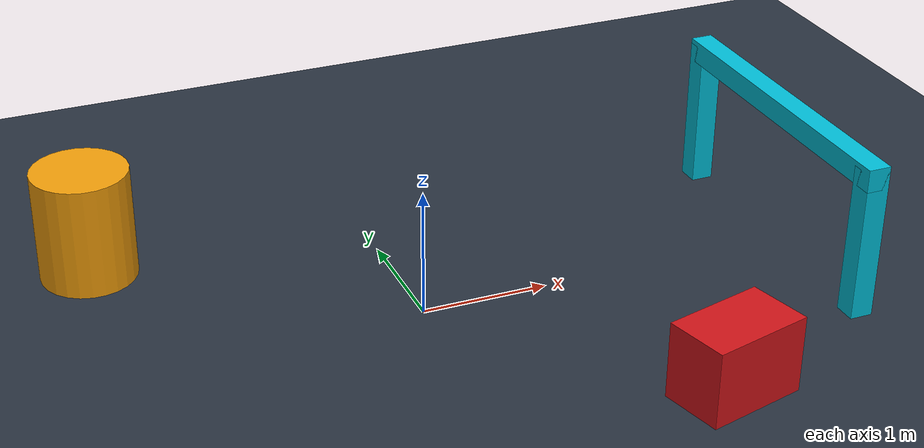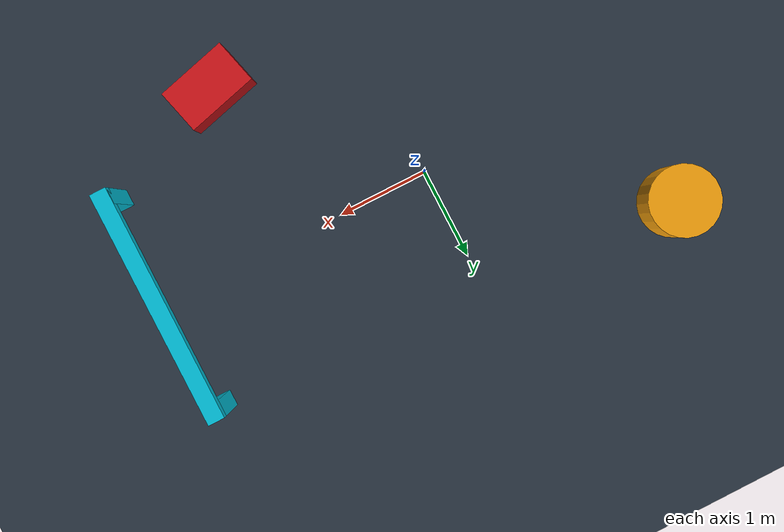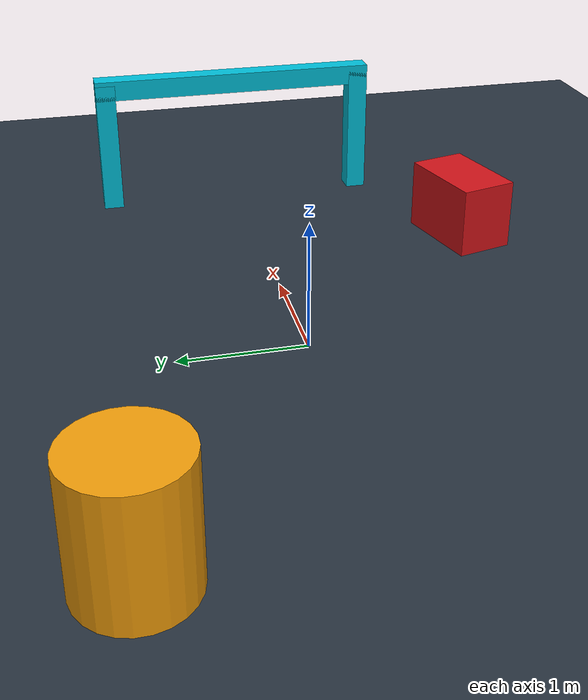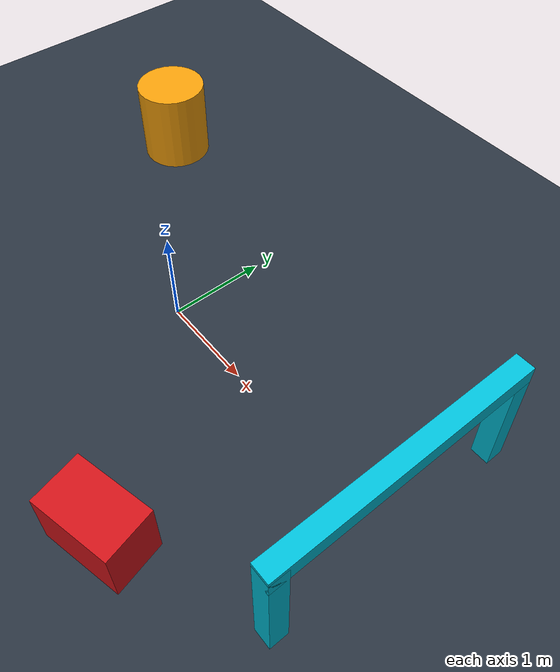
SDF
<?xml version="1.0"?>
<sdf version="1.9">
  <world name="wildebeest_test_arena">
    <physics name="1ms" type="ignored">
      <max_step_size>0.001</max_step_size>
      <real_time_factor>1.0</real_time_factor>
    </physics>
    <gravity>0 0 -9.80665</gravity>
    <magnetic_field>5.64e-6 2.29e-5 -4.24e-5</magnetic_field>
    <atmosphere type="adiabatic"/>

    <plugin filename="gz-sim-physics-system" name="gz::sim::systems::Physics"/>
    <plugin filename="gz-sim-user-commands-system" name="gz::sim::systems::UserCommands"/>
    <plugin filename="gz-sim-scene-broadcaster-system" name="gz::sim::systems::SceneBroadcaster"/>
    <plugin filename="gz-sim-sensors-system" name="gz::sim::systems::Sensors">
      <render_engine>ogre2</render_engine>
    </plugin>
    <plugin filename="gz-sim-navsat-system" name="gz::sim::systems::NavSat"/>

    <scene>
      <ambient>0.22 0.25 0.30 1</ambient>
      <background>0.035 0.045 0.065 1</background>
      <shadows>true</shadows>
      <grid>false</grid>
    </scene>
    <spherical_coordinates>
      <surface_model>EARTH_WGS84</surface_model>
      <world_frame_orientation>ENU</world_frame_orientation>
      <latitude_deg>25.2048</latitude_deg>
      <longitude_deg>55.2708</longitude_deg>
      <elevation>5</elevation>
      <heading_deg>0</heading_deg>
    </spherical_coordinates>

    <light name="sun" type="directional">
      <cast_shadows>true</cast_shadows>
      <pose>0 0 10 0 0 0</pose>
      <diffuse>0.92 0.92 0.88 1</diffuse>
      <specular>0.28 0.28 0.28 1</specular>
      <attenuation>
        <range>1000</range>
        <constant>0.9</constant>
        <linear>0.01</linear>
        <quadratic>0.001</quadratic>
      </attenuation>
      <direction>-0.4 0.25 -0.88</direction>
    </light>

    <model name="ground_plane">
      <static>true</static>
      <link name="link">
        <collision name="collision">
          <geometry><plane><normal>0 0 1</normal><size>30 30</size></plane></geometry>
          <surface>
            <friction><ode><mu>0.9</mu><mu2>0.9</mu2></ode></friction>
          </surface>
        </collision>
        <visual name="visual">
          <geometry><plane><normal>0 0 1</normal><size>30 30</size></plane></geometry>
          <material>
            <ambient>0.12 0.15 0.19 1</ambient>
            <diffuse>0.16 0.20 0.25 1</diffuse>
            <specular>0.03 0.03 0.03 1</specular>
          </material>
        </visual>
      </link>
    </model>

    <model name="cyan_gate">
      <static>true</static>
      <pose>3 0 0 0 0 0</pose>
      <link name="link">
        <collision name="left_collision">
          <pose>0 1.2 0.6 0 0 0</pose>
          <geometry><box><size>0.18 0.18 1.2</size></box></geometry>
        </collision>
        <visual name="left_visual">
          <pose>0 1.2 0.6 0 0 0</pose>
          <geometry><box><size>0.18 0.18 1.2</size></box></geometry>
          <material><diffuse>0.0 0.75 0.85 1</diffuse></material>
        </visual>
        <collision name="right_collision">
          <pose>0 -1.2 0.6 0 0 0</pose>
          <geometry><box><size>0.18 0.18 1.2</size></box></geometry>
        </collision>
        <visual name="right_visual">
          <pose>0 -1.2 0.6 0 0 0</pose>
          <geometry><box><size>0.18 0.18 1.2</size></box></geometry>
          <material><diffuse>0.0 0.75 0.85 1</diffuse></material>
        </visual>
        <collision name="top_collision">
          <pose>0 0 1.15 0 0 0</pose>
          <geometry><box><size>0.18 2.58 0.18</size></box></geometry>
        </collision>
        <visual name="top_visual">
          <pose>0 0 1.15 0 0 0</pose>
          <geometry><box><size>0.18 2.58 0.18</size></box></geometry>
          <material><diffuse>0.0 0.75 0.85 1</diffuse></material>
        </visual>
      </link>
    </model>

    <model name="obstacle_red">
      <static>true</static>
      <pose>1.6 -1.8 0.3 0 0 0.25</pose>
      <link name="link">
        <collision name="collision"><geometry><box><size>0.8 0.5 0.6</size></box></geometry></collision>
        <visual name="visual">
          <geometry><box><size>0.8 0.5 0.6</size></box></geometry>
          <material><diffuse>0.82 0.08 0.10 1</diffuse></material>
        </visual>
      </link>
    </model>

    <model name="obstacle_yellow">
      <static>true</static>
      <pose>-2.2 1.5 0.45 0 0 -0.4</pose>
      <link name="link">
        <collision name="collision"><geometry><cylinder><radius>0.38</radius><length>0.9</length></cylinder></geometry></collision>
        <visual name="visual">
          <geometry><cylinder><radius>0.38</radius><length>0.9</length></cylinder></geometry>
          <material><diffuse>0.95 0.62 0.04 1</diffuse></material>
        </visual>
      </link>
    </model>
  </world>
</sdf>
